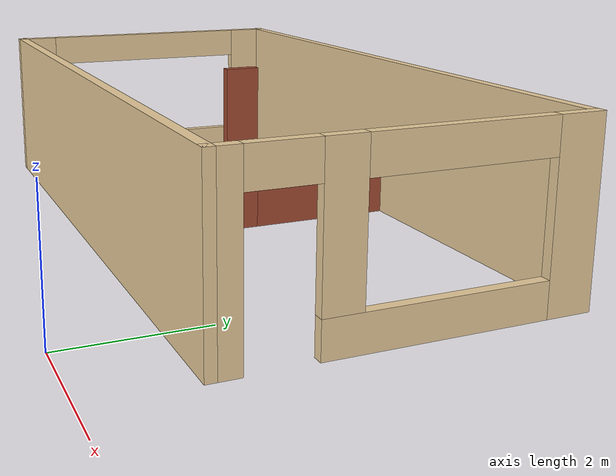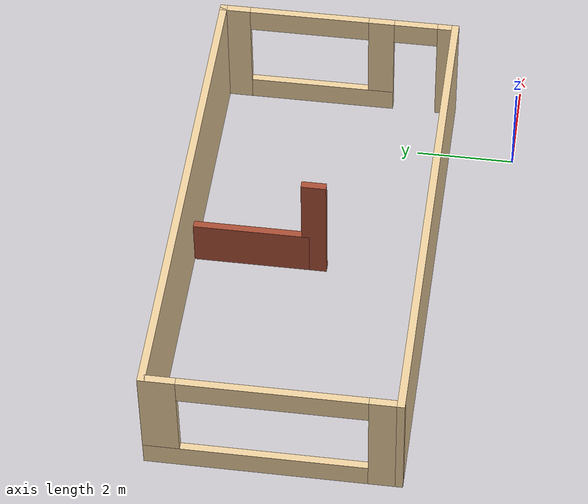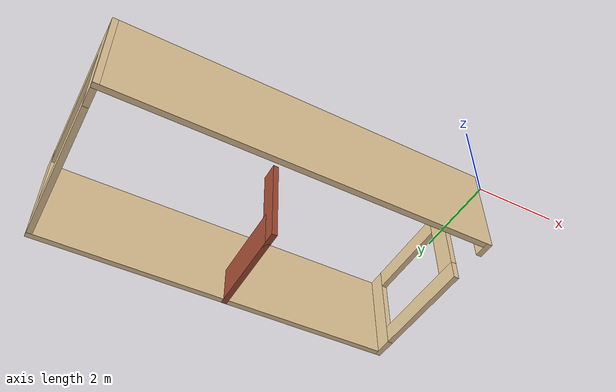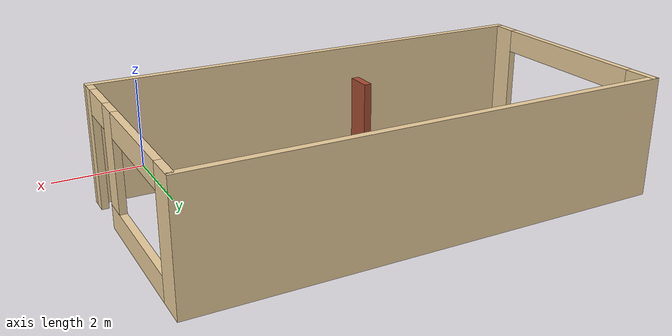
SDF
<?xml version='1.0'?>
<sdf version='1.6'>
  <model name='my_office'>
    <pose frame=''>-3.61458 3.83942 0 0 -0 0</pose>
    <link name='Wall_10'>
      <collision name='Wall_10_Collision'>
        <geometry>
          <box>
            <size>2.5 0.15 1</size>
          </box>
        </geometry>
        <pose frame=''>0 0 0.5 0 -0 0</pose>
      </collision>
      <visual name='Wall_10_Visual'>
        <pose frame=''>0 0 0.5 0 -0 0</pose>
        <geometry>
          <box>
            <size>2.5 0.15 1</size>
          </box>
        </geometry>
        <material>
          <script>
            <uri>file://media/materials/scripts/gazebo.material</uri>
            <name>Gazebo/Bricks</name>
          </script>
          <ambient>0.760784 0.662745 0.627451 1</ambient>
        </material>
        <meta>
          <layer>0</layer>
        </meta>
      </visual>
      <pose frame=''>0.219958 1.24458 0 0 0 -1.5708</pose>
    </link>
    <link name='Wall_13'>
      <collision name='Wall_13_Collision'>
        <geometry>
          <box>
            <size>0.5 0.15 2.5</size>
          </box>
        </geometry>
        <pose frame=''>0 0 1.25 0 -0 0</pose>
      </collision>
      <visual name='Wall_13_Visual'>
        <pose frame=''>0 0 1.25 0 -0 0</pose>
        <geometry>
          <box>
            <size>0.5 0.15 2.5</size>
          </box>
        </geometry>
        <material>
          <script>
            <uri>file://media/materials/scripts/gazebo.material</uri>
            <name>Gazebo/Bricks</name>
          </script>
          <ambient>0.760784 0.662745 0.627451 1</ambient>
        </material>
        <meta>
          <layer>0</layer>
        </meta>
      </visual>
      <pose frame=''>0.219958 -0.105419 0 0 0 -1.5708</pose>
    </link>
    <link name='Wall_5'>
      <collision name='Wall_5_Collision'>
        <geometry>
          <box>
            <size>10 0.15 2.5</size>
          </box>
        </geometry>
        <pose frame=''>0 0 1.25 0 -0 0</pose>
      </collision>
      <visual name='Wall_5_Visual'>
        <pose frame=''>0 0 1.25 0 -0 0</pose>
        <geometry>
          <box>
            <size>10 0.15 2.5</size>
          </box>
        </geometry>
        <material>
          <script>
            <uri>file://media/materials/scripts/gazebo.material</uri>
            <name>Gazebo/Grey</name>
          </script>
          <ambient>0.921569 0.807843 0.615686 1</ambient>
        </material>
        <meta>
          <layer>0</layer>
        </meta>
      </visual>
      <pose frame=''>0 2.425 0 0 -0 0</pose>
    </link>
    <link name='Wall_6'>
      <pose frame=''>4.925 0 0 0 0 -1.5708</pose>
      <visual name='Wall_6_Visual_0'>
        <pose frame=''>-2.18029 0 1.25 0 -0 0</pose>
        <geometry>
          <box>
            <size>0.639419 0.15 2.5</size>
          </box>
        </geometry>
        <material>
          <script>
            <uri>file://media/materials/scripts/gazebo.material</uri>
            <name>Gazebo/Grey</name>
          </script>
          <ambient>0.921569 0.807843 0.615686 1</ambient>
        </material>
        <meta>
          <layer>0</layer>
        </meta>
      </visual>
      <collision name='Wall_6_Collision_0'>
        <geometry>
          <box>
            <size>0.639419 0.15 2.5</size>
          </box>
        </geometry>
        <pose frame=''>-2.18029 0 1.25 0 -0 0</pose>
      </collision>
      <visual name='Wall_6_Visual_1'>
        <pose frame=''>2.28061 0 1.25 0 -0 0</pose>
        <geometry>
          <box>
            <size>0.438774 0.15 2.5</size>
          </box>
        </geometry>
        <material>
          <script>
            <uri>file://media/materials/scripts/gazebo.material</uri>
            <name>Gazebo/Grey</name>
          </script>
          <ambient>0.921569 0.807843 0.615686 1</ambient>
        </material>
        <meta>
          <layer>0</layer>
        </meta>
      </visual>
      <collision name='Wall_6_Collision_1'>
        <geometry>
          <box>
            <size>0.438774 0.15 2.5</size>
          </box>
        </geometry>
        <pose frame=''>2.28061 0 1.25 0 -0 0</pose>
      </collision>
      <visual name='Wall_6_Visual_2'>
        <pose frame=''>-0.349677 0 0.25 0 -0 0</pose>
        <geometry>
          <box>
            <size>3.02181 0.15 0.5</size>
          </box>
        </geometry>
        <material>
          <script>
            <uri>file://media/materials/scripts/gazebo.material</uri>
            <name>Gazebo/Grey</name>
          </script>
          <ambient>0.921569 0.807843 0.615686 1</ambient>
        </material>
        <meta>
          <layer>0</layer>
        </meta>
      </visual>
      <collision name='Wall_6_Collision_2'>
        <geometry>
          <box>
            <size>3.02181 0.15 0.5</size>
          </box>
        </geometry>
        <pose frame=''>-0.349677 0 0.25 0 -0 0</pose>
      </collision>
      <visual name='Wall_6_Visual_3'>
        <pose frame=''>0.894323 0 1.5 0 -0 0</pose>
        <geometry>
          <box>
            <size>0.533807 0.15 2</size>
          </box>
        </geometry>
        <material>
          <script>
            <uri>file://media/materials/scripts/gazebo.material</uri>
            <name>Gazebo/Grey</name>
          </script>
          <ambient>0.921569 0.807843 0.615686 1</ambient>
        </material>
        <meta>
          <layer>0</layer>
        </meta>
      </visual>
      <collision name='Wall_6_Collision_3'>
        <geometry>
          <box>
            <size>0.533807 0.15 2</size>
          </box>
        </geometry>
        <pose frame=''>0.894323 0 1.5 0 -0 0</pose>
      </collision>
      <visual name='Wall_6_Visual_4'>
        <pose frame=''>-0.616581 0 2.25 0 -0 0</pose>
        <geometry>
          <box>
            <size>2.488 0.15 0.5</size>
          </box>
        </geometry>
        <material>
          <script>
            <uri>file://media/materials/scripts/gazebo.material</uri>
            <name>Gazebo/Grey</name>
          </script>
          <ambient>0.921569 0.807843 0.615686 1</ambient>
        </material>
        <meta>
          <layer>0</layer>
        </meta>
      </visual>
      <collision name='Wall_6_Collision_4'>
        <geometry>
          <box>
            <size>2.488 0.15 0.5</size>
          </box>
        </geometry>
        <pose frame=''>-0.616581 0 2.25 0 -0 0</pose>
      </collision>
      <visual name='Wall_6_Visual_5'>
        <pose frame=''>1.61123 0 2.25 0 -0 0</pose>
        <geometry>
          <box>
            <size>0.9 0.15 0.5</size>
          </box>
        </geometry>
        <material>
          <script>
            <uri>file://media/materials/scripts/gazebo.material</uri>
            <name>Gazebo/Grey</name>
          </script>
          <ambient>0.921569 0.807843 0.615686 1</ambient>
        </material>
        <meta>
          <layer>0</layer>
        </meta>
      </visual>
      <collision name='Wall_6_Collision_5'>
        <geometry>
          <box>
            <size>0.9 0.15 0.5</size>
          </box>
        </geometry>
        <pose frame=''>1.61123 0 2.25 0 -0 0</pose>
      </collision>
    </link>
    <link name='Wall_7'>
      <collision name='Wall_7_Collision'>
        <geometry>
          <box>
            <size>10 0.15 2.5</size>
          </box>
        </geometry>
        <pose frame=''>0 0 1.25 0 -0 0</pose>
      </collision>
      <visual name='Wall_7_Visual'>
        <pose frame=''>0 0 1.25 0 -0 0</pose>
        <geometry>
          <box>
            <size>10 0.15 2.5</size>
          </box>
        </geometry>
        <material>
          <script>
            <uri>file://media/materials/scripts/gazebo.material</uri>
            <name>Gazebo/Grey</name>
          </script>
          <ambient>0.921569 0.807843 0.615686 1</ambient>
        </material>
        <meta>
          <layer>0</layer>
        </meta>
      </visual>
      <pose frame=''>0 -2.425 0 0 -0 3.14159</pose>
    </link>
    <link name='Wall_8'>
      <pose frame=''>-4.925 0 0 0 -0 1.5708</pose>
      <visual name='Wall_8_Visual_0'>
        <pose frame=''>-2.16446 0 1.25 0 -0 0</pose>
        <geometry>
          <box>
            <size>0.671088 0.15 2.5</size>
          </box>
        </geometry>
        <material>
          <script>
            <uri>file://media/materials/scripts/gazebo.material</uri>
            <name>Gazebo/Grey</name>
          </script>
          <ambient>0.921569 0.807843 0.615686 1</ambient>
        </material>
        <meta>
          <layer>0</layer>
        </meta>
      </visual>
      <collision name='Wall_8_Collision_0'>
        <geometry>
          <box>
            <size>0.671088 0.15 2.5</size>
          </box>
        </geometry>
        <pose frame=''>-2.16446 0 1.25 0 -0 0</pose>
      </collision>
      <visual name='Wall_8_Visual_1'>
        <pose frame=''>0.335544 0 0.25 0 -0 0</pose>
        <geometry>
          <box>
            <size>4.32891 0.15 0.5</size>
          </box>
        </geometry>
        <material>
          <script>
            <uri>file://media/materials/scripts/gazebo.material</uri>
            <name>Gazebo/Grey</name>
          </script>
          <ambient>0.921569 0.807843 0.615686 1</ambient>
        </material>
        <meta>
          <layer>0</layer>
        </meta>
      </visual>
      <collision name='Wall_8_Collision_1'>
        <geometry>
          <box>
            <size>4.32891 0.15 0.5</size>
          </box>
        </geometry>
        <pose frame=''>0.335544 0 0.25 0 -0 0</pose>
      </collision>
      <visual name='Wall_8_Visual_2'>
        <pose frame=''>2.14254 0 1.5 0 -0 0</pose>
        <geometry>
          <box>
            <size>0.714912 0.15 2</size>
          </box>
        </geometry>
        <material>
          <script>
            <uri>file://media/materials/scripts/gazebo.material</uri>
            <name>Gazebo/Grey</name>
          </script>
          <ambient>0.921569 0.807843 0.615686 1</ambient>
        </material>
        <meta>
          <layer>0</layer>
        </meta>
      </visual>
      <collision name='Wall_8_Collision_2'>
        <geometry>
          <box>
            <size>0.714912 0.15 2</size>
          </box>
        </geometry>
        <pose frame=''>2.14254 0 1.5 0 -0 0</pose>
      </collision>
      <visual name='Wall_8_Visual_3'>
        <pose frame=''>-0.021912 0 2.25 0 -0 0</pose>
        <geometry>
          <box>
            <size>3.614 0.15 0.5</size>
          </box>
        </geometry>
        <material>
          <script>
            <uri>file://media/materials/scripts/gazebo.material</uri>
            <name>Gazebo/Grey</name>
          </script>
          <ambient>0.921569 0.807843 0.615686 1</ambient>
        </material>
        <meta>
          <layer>0</layer>
        </meta>
      </visual>
      <collision name='Wall_8_Collision_3'>
        <geometry>
          <box>
            <size>3.614 0.15 0.5</size>
          </box>
        </geometry>
        <pose frame=''>-0.021912 0 2.25 0 -0 0</pose>
      </collision>
    </link>
    <static>1</static>
  </model>
</sdf>
